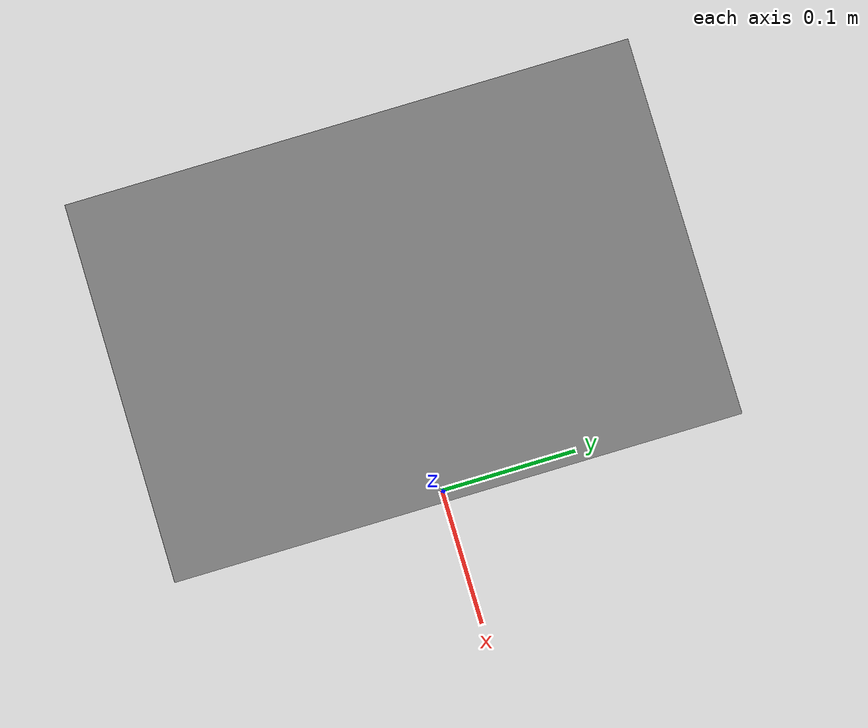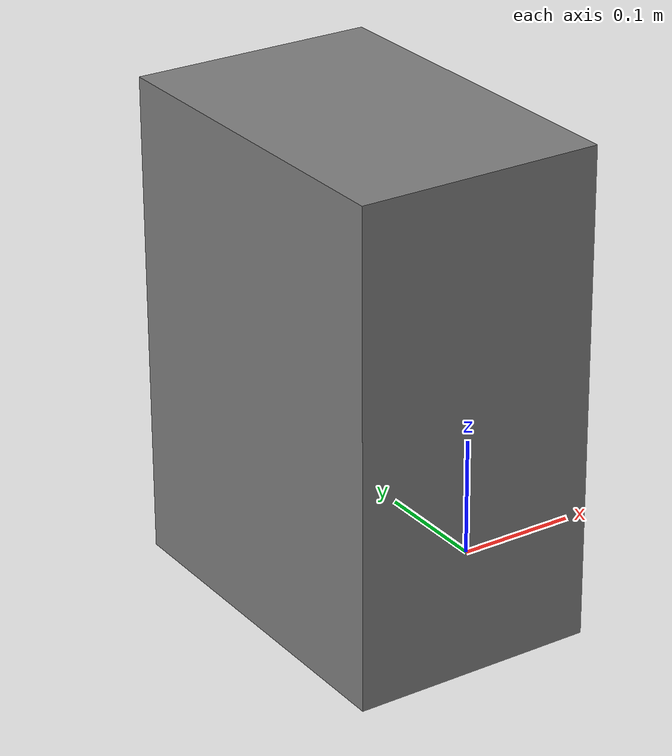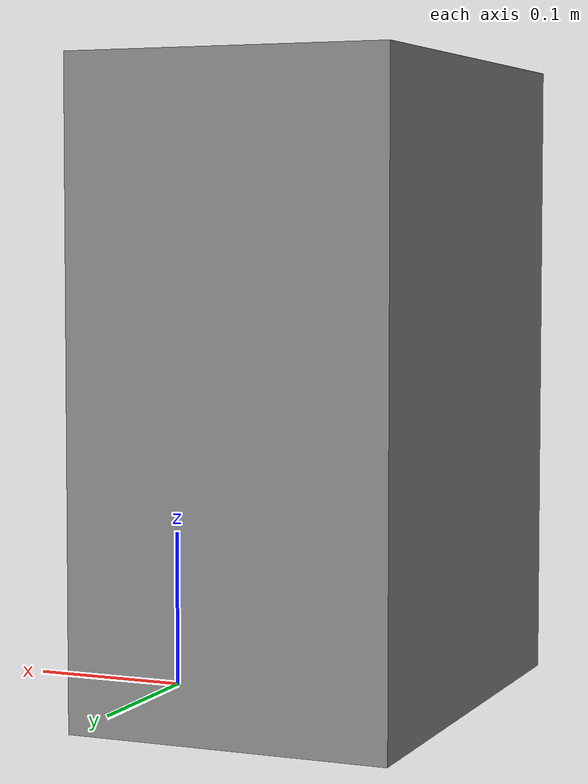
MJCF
<?xml version="1.0"?>
<mujoco model="suitcase">
  <!-- World body -->
  <worldbody>
    <body name="suitcase">
      <freejoint name="suitcase_root"/>
      <inertial mass="2.0" pos="0 0 0" diaginertia="0.0334 0.02167 0.04167"/>

      <geom type="box" size="0.1 0.15 0.2" pos="-0.1 0.0 0.2"/>
    </body>
  </worldbody>
   <sensor>
    <framepos name="suitcase_pos" objtype="xbody" objname="suitcase"/>
    <framequat name="suitcase_quat" objtype="xbody" objname="suitcase"/>
  </sensor>

</mujoco>
